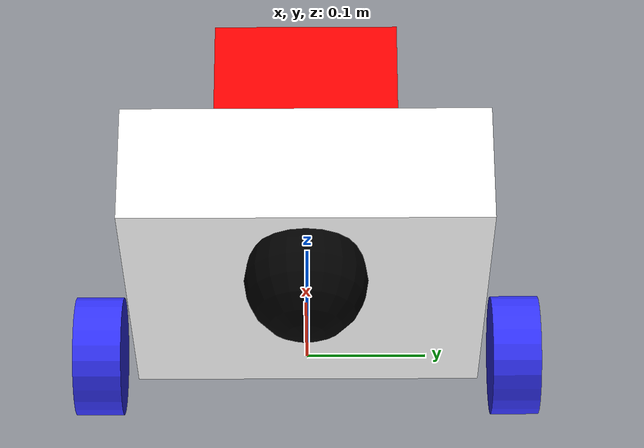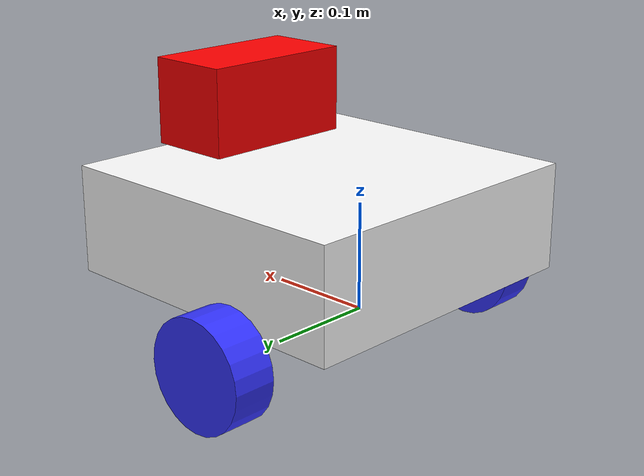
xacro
<?xml version="1.0"?>
<robot xmlns:xacro="http://www.ros.org/wiki/xacro" >

    <xacro:include filename="interial_macros.xacro"/>
    <material name ="white">
        <color rgba="1 1 1 1"/>
    </material>

    <material name="orange">
        <color rgba="1 0.3 0.1 0.1"/>
    </material>

    <material name="blue">
        <color rgba="0.2 0.2 1 1"/>
    </material>

    <material name="black">
        <color rgba="0 0 0 1"/>
    </material>

    <material name="red">
        <color rgba="1 0 0 1"/>
    </material>

     <joint name="base_footprint_joint" type="fixed">
        <parent link="base_link"/>
        <child link="base_footprint"/>
        <origin xyz="0 0 0" rpy="0 0 0"/>
    </joint>

    <link name="base_footprint">
    </link>

    <!--BASE LINK-->
    <link name="base_link">

    </link>

    <joint name="chassis_joint" type="fixed">
        <parent link="base_link"/>
        <child link="chassis"/>
        <origin xyz="-0.1 0 0"/>

    </joint>

    <!--CHASSIS LINK-->
    <link name="chassis">
        <visual>
            <origin xyz="0.15 0 0.075"/>
            <geometry>
                <box size="0.3 0.3 0.1"/>
            </geometry>
            <material name="white" />
        </visual>
        <collision>
            <origin xyz="0.15 0 0.075"/>
            <geometry>
                <box size="0.3 0.3 0.1"/>
            </geometry>
        </collision>
        <xacro:inertial_box mass="0.5" x="0.3" y="0.3" z="0.1">
            <origin xyz="0.15 0.0 0.075" rpy="0.0 0.0 0.0"/>
        </xacro:inertial_box>
    </link>
    <gazebo reference="chasis">
        <material>Gazebo/White</material>
    </gazebo>

    <!--LEFT WHEEL LINK-->
    <joint name="left_wheel_joint" type="continuous">
        <parent link="base_link"/>
        <child link="left_wheel"/>
        <origin xyz="0.0 0.175 0.0" rpy="-${pi/2} 0.0 0.0"/>
        <axis xyz="0.0 0.0 1.0"/>
    </joint>

    <link name="left_wheel">
        <visual>
            <geometry>
                <cylinder radius="0.05" length="0.04"/>
            </geometry>
            <material name="blue"/>
        </visual>
        <collision>
            <geometry>
                <cylinder radius="0.05" length="0.04"/>
            </geometry>
        </collision>
        <xacro:inertial_cylinder mass = "0.1" length = "0.04" radius = "0.05">
            <origin xyz="0.0 0.0 0.0" rpy="0.0 0.0 0.0"/>
        </xacro:inertial_cylinder>
    </link>

    <gazebo reference="left_wheel">
        <material>Gazebo/Blue</material>
    </gazebo>

    <!--RIGHT WHEEL LINK-->
    <joint name="right_wheel_joint" type="continuous">
        <parent link="base_link"/>
        <child link="right_wheel"/>
        <origin xyz="0.0 -0.175 0.0" rpy="${pi/2} 0.0 0.0"/>
        <axis xyz="0.0 0.0 -1.0"/>
    </joint>

    <link name="right_wheel">
        <visual>
            <geometry>
                <cylinder radius="0.05" length="0.04"/>
            </geometry>
            <material name="blue"/>
        </visual>
        <collision>
            <geometry>
                <cylinder radius="0.05" length="0.04"/>
            </geometry>
        </collision>
        <xacro:inertial_cylinder mass = "0.1" length = "0.04" radius = "0.05">
            <origin xyz="0.0 0.0 0.0" rpy="0.0 0.0 0.0"/>
        </xacro:inertial_cylinder>
    </link>

    <gazebo reference="right_wheel">
        <material>Gazebo/Blue</material>
    </gazebo>

    <!--FRONT BOX LINK-->
    <joint name="front_box_joint" type="fixed">
        <parent link="chassis"/>
        <child link="front_box"/>
        <origin xyz="0.24 0.0 0.175"/>
    </joint>

    <link name="front_box">
        <visual>
            <origin xyz="0.0 0.0 0.0"/>
            <geometry>
                <box size="0.08 0.15 0.08"/>
            </geometry>
            <material name="red" />
        </visual>
        <collision>
            <origin xyz="0.0 0.0 0.0"/>
            <geometry>
                <box size="0.08 0.15 0.08"/>
            </geometry>
        </collision>
        <xacro:inertial_box mass="0.2" x="0.08" y="0.15" z="0.08">
            <origin xyz="0.0 0.0 0.0" rpy="0.0 0.0 0.0"/>
        </xacro:inertial_box>
    </link>

    <gazebo reference="front_box">
        <material>Gazebo/Red</material>
    </gazebo>

    <!--CASTER WHEEL LINK -->
    <joint name="caster_wheel_joint" type="fixed">
        <parent link="chassis"/>
        <child link="caster_wheel"/>
        <origin xyz="0.24 0.0 0.0"/>
    </joint>
    <link name="caster_wheel">
        <visual>
            <geometry>
                <sphere radius="0.05"/>
            </geometry>
            <material name="black"/>
        </visual>
        <collision>
            <geometry>
                <sphere radius="0.05"/>
            </geometry>
        </collision>
        <xacro:inertial_sphere mass="0.1" radius="0.05">
            <origin xyz="0.0 0.0 0.0" rpy="0.0 0.0 0.0"/>
        </xacro:inertial_sphere>
    </link>

    <gazebo reference="caster_wheel">
        <material>Gazebo/Black</material>
        <mu1 value ="0.001"/>
        <mu2 value ="0.001"/>
    </gazebo>

</robot>
